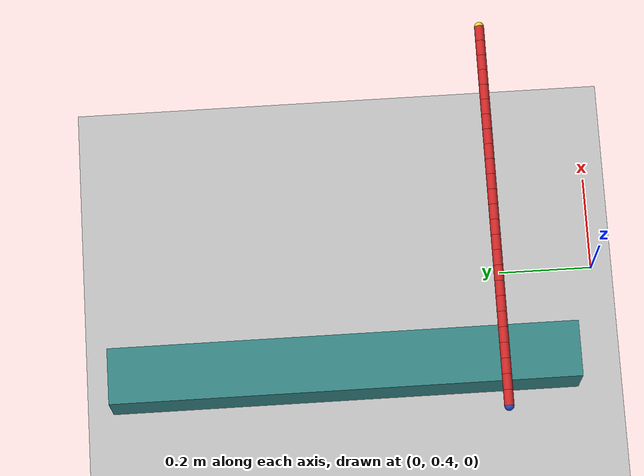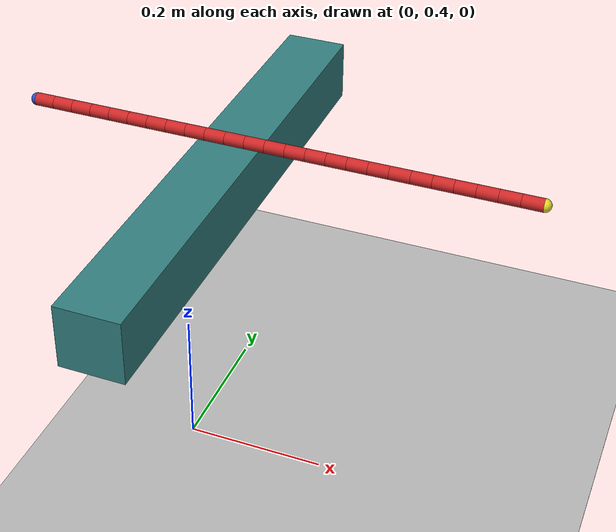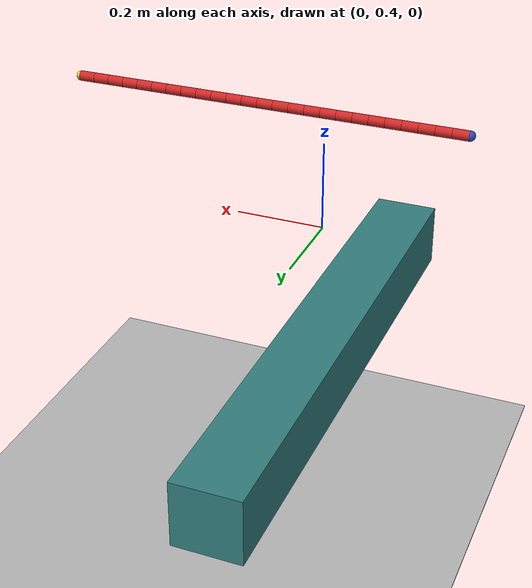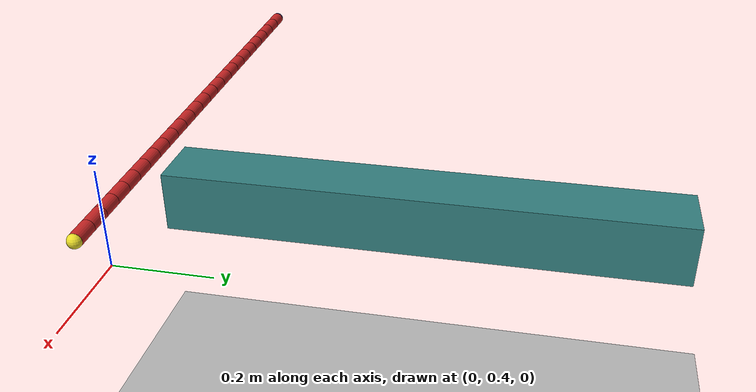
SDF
<sdf version="1.4">
 <world name="default">
  <scene>
   <grid>false</grid>
   <origin_visual>false</origin_visual>
   <sky><clouds><speed>12</speed></clouds></sky>
  </scene>
  <physics name="ode" type="ode">
   <max_step_size>0.01</max_step_size>
   <real_time_factor>1</real_time_factor>
   <real_time_update_rate>0</real_time_update_rate>
   <ode>
    <solver>
     <island_threads>2</island_threads>
     <type>quick</type>
     <iters>100</iters>
     <sor>1.0</sor>
     <use_dynamic_moi_rescaling>false</use_dynamic_moi_rescaling>
    </solver>
    <constraints><erp>0.2</erp></constraints>
   </ode>
  </physics>
  <plugin name="arm_gazebo_ros" filename="libarm_gazebo_ros_plugin.so"/>
  <plugin name="gazebo_ros_tf_plugin" filename="libgazebo_ros_tf_plugin.so"/>
  <plugin name="ros_link_attacher_plugin" filename="libgazebo_ros_link_attacher.so"/>
  <plugin name="position_3d_plugin" filename="libposition_3d_plugin.so"/>
  <plugin name="collision_map_plugin" filename="libcollision_map_plugin.so"/>
  <include><uri>model://my_ground_plane</uri><pose>0 0 -0.415 0 0 0</pose></include>
  <include><uri>model://sun</uri></include>
  <model name="long_hook1">
   <pose>-0.2 0.95 -0.04 0 0 1.5707</pose>
   <link name="link_1">
    <kinematic>true</kinematic>
    <pose>0 0 0.1 0 0 0 0</pose>
    <inertial>
     <pose>0 0 -0.08 0 0 0 0</pose>
     <inertia>
      <ixx>0.03541666666666667</ixx>
      <ixy>0</ixy>
      <ixz>0</ixz>
      <iyy>0.04166666666666667</iyy>
      <iyz>0</iyz>
      <izz>0.010416666666666668</izz>
     </inertia>
     <mass>10.0</mass>
    </inertial>
    <visual name="visual">
     <geometry><box><size>1.0 0.12 0.12</size></box></geometry>
     <material><ambient>0.2 0.5 0.5 1.0</ambient><diffuse>0.2 0.5 0.5 1.0</diffuse></material>
    </visual>
    <collision name="box_collision">
     <geometry><box><size>1.0 0.12 0.12</size></box></geometry>
     <surface>
      <friction><ode><mu>1.0</mu><mu2>1.0</mu2></ode></friction>
      <contact><ode><kp>1e15</kp><kd>1e12</kd></ode></contact>
     </surface>
    </collision>
   </link>
  </model>
  <include><uri>model://rope_3d</uri><pose>-0.36 0.63 0.37 0 0 0</pose></include>
 </world>
</sdf>

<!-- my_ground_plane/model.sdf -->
<sdf version="1.5">
    <model name="my_ground_plane">
        <static>true</static>
            <allow_auto_disable>true</allow_auto_disable>
        <link name="link">
            <collision name="collision">
                <geometry>
                    <plane>
                        <normal>0 0 1</normal>
                        <size>4 4</size>
                    </plane>
                </geometry>
                <surface>
                    <friction>
                        <ode>
                            <mu>1000</mu>
                            <mu2>1000</mu2>
                        </ode>
                    </friction>
                    <contact>
                        <ode>
                            <kp>1e15</kp>
                            <kd>1e10</kd>
                        </ode>
                    </contact>
                </surface>
            </collision>
            <visual name="visual">
                <cast_shadows>false</cast_shadows>
                <geometry>
                    <plane>
                        <normal>0 0 1</normal>
                        <size>4 4</size>
                    </plane>
                </geometry>
                <material>
                    <script>
                        <uri>model://my_ground_plane/concrete.material</uri>
                        <name>ConcreteTexture</name>
                    </script>
                </material>
            </visual>
        </link>
    </model>
</sdf>
